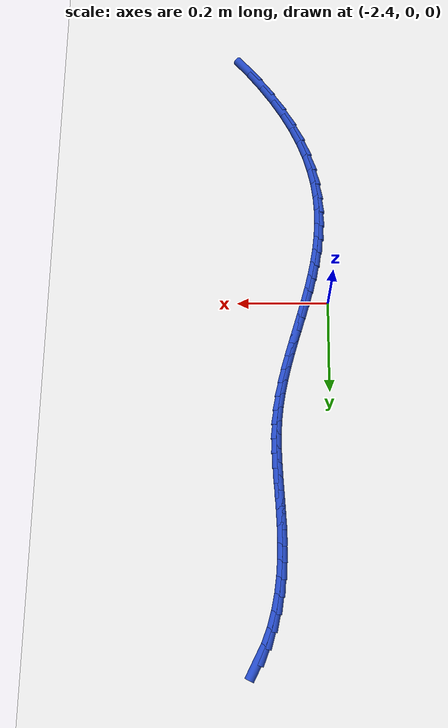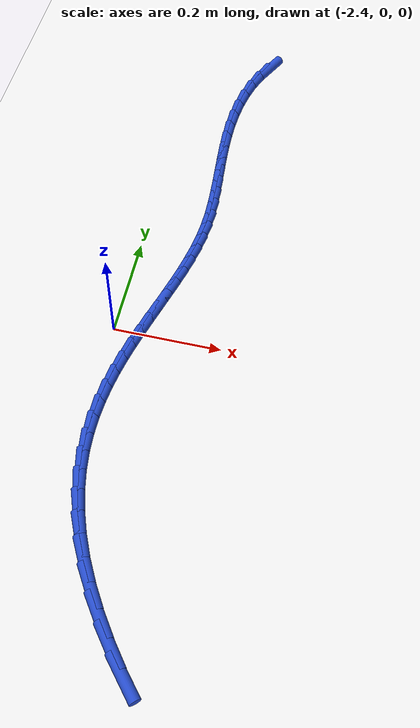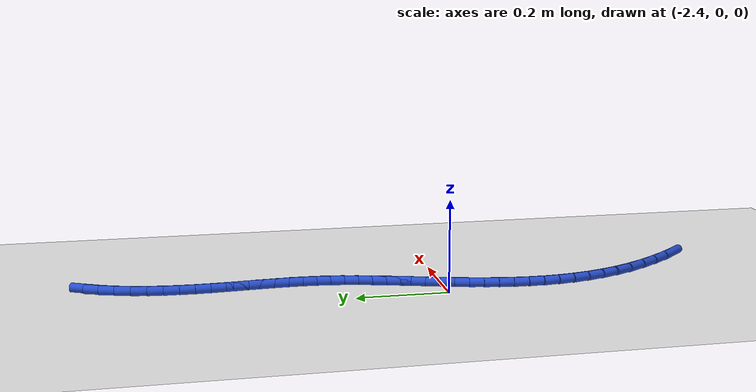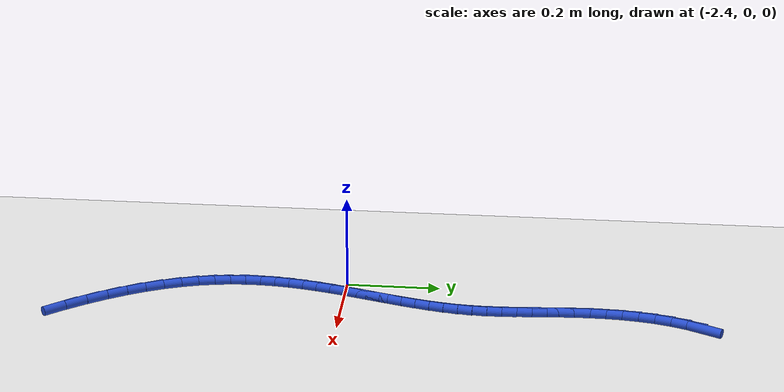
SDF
<sdf version="1.6">
 <world name="default">
  <model name="ground_plane">
   <static>1</static>
   <link name="link">
    <collision name="collision">
     <geometry><plane><normal>0 0 1</normal><size>100 100</size></plane></geometry>
     <surface><friction><ode><mu>100</mu><mu2>50</mu2></ode></friction></surface>
    </collision>
    <visual name="visual">
     <cast_shadows>0</cast_shadows>
     <geometry><plane><normal>0 0 1</normal><size>100 100</size></plane></geometry>
     <material>
      <script><uri>file://media/materials/scripts/gazebo.material</uri><name>Gazebo/WhiteGlow</name></script>
     </material>
    </visual>
   </link>
  </model>
  <model name="line">
   <link name="link_103">
    <pose>-2.2491230213512154 0.7437781416370526 0.01 0 1.57 1.1083394417401125</pose>
    <collision name="collision">
     <geometry><cylinder><radius>0.01</radius><length>0.08</length></cylinder></geometry>
    </collision>
    <visual name="visual">
     <material>
      <script><name>Gazebo/Blue</name><uri>file://media/materials/scripts/gazebo.material</uri></script>
     </material>
     <geometry><cylinder><radius>0.01</radius><length>0.08</length></cylinder></geometry>
    </visual>
   </link>
   <link name="link_104">
    <pose>-2.263714909391568 0.7145072835814696 0.01 0 1.57 1.2164052872625433</pose>
    <collision name="collision">
     <geometry><cylinder><radius>0.01</radius><length>0.08</length></cylinder></geometry>
    </collision>
    <visual name="visual">
     <material>
      <script><name>Gazebo/Blue</name><uri>file://media/materials/scripts/gazebo.material</uri></script>
     </material>
     <geometry><cylinder><radius>0.01</radius><length>0.08</length></cylinder></geometry>
    </visual>
   </link>
   <link name="link_105">
    <pose>-2.275316665080006 0.6831522585227706 0.01 0 1.57 1.307256020430511</pose>
    <collision name="collision">
     <geometry><cylinder><radius>0.01</radius><length>0.08</length></cylinder></geometry>
    </collision>
    <visual name="visual">
     <material>
      <script><name>Gazebo/Blue</name><uri>file://media/materials/scripts/gazebo.material</uri></script>
     </material>
     <geometry><cylinder><radius>0.01</radius><length>0.08</length></cylinder></geometry>
    </visual>
   </link>
   <link name="link_106">
    <pose>-2.284156563734444 0.6503895630564656 0.01 0 1.57 1.384692343403036</pose>
    <collision name="collision">
     <geometry><cylinder><radius>0.01</radius><length>0.08</length></cylinder></geometry>
    </collision>
    <visual name="visual">
     <material>
      <script><name>Gazebo/Blue</name><uri>file://media/materials/scripts/gazebo.material</uri></script>
     </material>
     <geometry><cylinder><radius>0.01</radius><length>0.08</length></cylinder></geometry>
    </visual>
   </link>
   <link name="link_107">
    <pose>-2.290462880672795 0.6168956937780656 0.01 0 1.57 1.4520692047336956</pose>
    <collision name="collision">
     <geometry><cylinder><radius>0.01</radius><length>0.08</length></cylinder></geometry>
    </collision>
    <visual name="visual">
     <material>
      <script><name>Gazebo/Blue</name><uri>file://media/materials/scripts/gazebo.material</uri></script>
     </material>
     <geometry><cylinder><radius>0.01</radius><length>0.08</length></cylinder></geometry>
    </visual>
   </link>
   <link name="link_108">
    <pose>-2.294465810321319 0.5833388848919385 0.01 0 1.57 1.5107909983761765</pose>
    <collision name="collision">
     <geometry><cylinder><radius>0.01</radius><length>0.08</length></cylinder></geometry>
    </collision>
    <visual name="visual">
     <material>
      <script><name>Gazebo/Blue</name><uri>file://media/materials/scripts/gazebo.material</uri></script>
     </material>
     <geometry><cylinder><radius>0.01</radius><length>0.08</length></cylinder></geometry>
    </visual>
   </link>
   <link name="link_109">
    <pose>-2.2964628654140493 0.5500975431983846 0.01 0 1.57 1.559487716065193</pose>
    <collision name="collision">
     <geometry><cylinder><radius>0.01</radius><length>0.08</length></cylinder></geometry>
    </collision>
    <visual name="visual">
     <material>
      <script><name>Gazebo/Blue</name><uri>file://media/materials/scripts/gazebo.material</uri></script>
     </material>
     <geometry><cylinder><radius>0.01</radius><length>0.08</length></cylinder></geometry>
    </visual>
   </link>
   <link name="link_110">
    <pose>-2.2968350109860936 0.5171907859584208 0.01 0 1.57 -1.5441995211613362</pose>
    <collision name="collision">
     <geometry><cylinder><radius>0.01</radius><length>0.08</length></cylinder></geometry>
    </collision>
    <visual name="visual">
     <material>
      <script><name>Gazebo/Blue</name><uri>file://media/materials/scripts/gazebo.material</uri></script>
     </material>
     <geometry><cylinder><radius>0.01</radius><length>0.08</length></cylinder></geometry>
    </visual>
   </link>
   <link name="link_111">
    <pose>-2.295968404741032 0.48461537429143253 0.01 0 1.57 -1.517533757458364</pose>
    <collision name="collision">
     <geometry><cylinder><radius>0.01</radius><length>0.08</length></cylinder></geometry>
    </collision>
    <visual name="visual">
     <material>
      <script><name>Gazebo/Blue</name><uri>file://media/materials/scripts/gazebo.material</uri></script>
     </material>
     <geometry><cylinder><radius>0.01</radius><length>0.08</length></cylinder></geometry>
    </visual>
   </link>
   <link name="link_112">
    <pose>-2.2942492043824454 0.45236806931680484 0.01 0 1.57 -1.502435910078608</pose>
    <collision name="collision">
     <geometry><cylinder><radius>0.01</radius><length>0.08</length></cylinder></geometry>
    </collision>
    <visual name="visual">
     <material>
      <script><name>Gazebo/Blue</name><uri>file://media/materials/scripts/gazebo.material</uri></script>
     </material>
     <geometry><cylinder><radius>0.01</radius><length>0.08</length></cylinder></geometry>
    </visual>
   </link>
   <link name="link_113">
    <pose>-2.292063567613914 0.4204456321539226 0.01 0 1.57 -1.4992144867879704</pose>
    <collision name="collision">
     <geometry><cylinder><radius>0.01</radius><length>0.08</length></cylinder></geometry>
    </collision>
    <visual name="visual">
     <material>
      <script><name>Gazebo/Blue</name><uri>file://media/materials/scripts/gazebo.material</uri></script>
     </material>
     <geometry><cylinder><radius>0.01</radius><length>0.08</length></cylinder></geometry>
    </visual>
   </link>
   <link name="link_114">
    <pose>-2.2897976521390175 0.38884482392217123 0.01 0 1.57 -1.5082219570572375</pose>
    <collision name="collision">
     <geometry><cylinder><radius>0.01</radius><length>0.08</length></cylinder></geometry>
    </collision>
    <visual name="visual">
     <material>
      <script><name>Gazebo/Blue</name><uri>file://media/materials/scripts/gazebo.material</uri></script>
     </material>
     <geometry><cylinder><radius>0.01</radius><length>0.08</length></cylinder></geometry>
    </visual>
   </link>
   <link name="link_115">
    <pose>-2.287837615661336 0.3575624057409356 0.01 0 1.57 -1.5298727334883941</pose>
    <collision name="collision">
     <geometry><cylinder><radius>0.01</radius><length>0.08</length></cylinder></geometry>
    </collision>
    <visual name="visual">
     <material>
      <script><name>Gazebo/Blue</name><uri>file://media/materials/scripts/gazebo.material</uri></script>
     </material>
     <geometry><cylinder><radius>0.01</radius><length>0.08</length></cylinder></geometry>
    </visual>
   </link>
   <link name="link_116">
    <pose>-2.28656961588445 0.32659513872960066 0.01 0 1.57 -1.5646048164098023</pose>
    <collision name="collision">
     <geometry><cylinder><radius>0.01</radius><length>0.08</length></cylinder></geometry>
    </collision>
    <visual name="visual">
     <material>
      <script><name>Gazebo/Blue</name><uri>file://media/materials/scripts/gazebo.material</uri></script>
     </material>
     <geometry><cylinder><radius>0.01</radius><length>0.08</length></cylinder></geometry>
    </visual>
   </link>
   <link name="link_117">
    <pose>-2.28637981051194 0.2959397840075516 0.01 0 1.57 1.5288216247889226</pose>
    <collision name="collision">
     <geometry><cylinder><radius>0.01</radius><length>0.08</length></cylinder></geometry>
    </collision>
    <visual name="visual">
     <material>
      <script><name>Gazebo/Blue</name><uri>file://media/materials/scripts/gazebo.material</uri></script>
     </material>
     <geometry><cylinder><radius>0.01</radius><length>0.08</length></cylinder></geometry>
    </visual>
   </link>
   <link name="link_118">
    <pose>-2.287654352051467 0.265593102248463 0.01 0 1.57 1.4710916535704168</pose>
    <collision name="collision">
     <geometry><cylinder><radius>0.01</radius><length>0.08</length></cylinder></geometry>
    </collision>
    <visual name="visual">
     <material>
      <script><name>Gazebo/Blue</name><uri>file://media/materials/scripts/gazebo.material</uri></script>
     </material>
     <geometry><cylinder><radius>0.01</radius><length>0.08</length></cylinder></geometry>
    </visual>
   </link>
   <link name="link_119">
    <pose>-2.290660589276395 0.23554166303483232 0.01 0 1.57 1.4183520591704075</pose>
    <collision name="collision">
     <geometry><cylinder><radius>0.01</radius><length>0.08</length></cylinder></geometry>
    </collision>
    <visual name="visual">
     <material>
      <script><name>Gazebo/Blue</name><uri>file://media/materials/scripts/gazebo.material</uri></script>
     </material>
     <geometry><cylinder><radius>0.01</radius><length>0.08</length></cylinder></geometry>
    </visual>
   </link>
   <link name="link_120">
    <pose>-2.295239896967014 0.20573549551692177 0.01 0 1.57 1.3742284952630461</pose>
    <collision name="collision">
     <geometry><cylinder><radius>0.01</radius><length>0.08</length></cylinder></geometry>
    </collision>
    <visual name="visual">
     <material>
      <script><name>Gazebo/Blue</name><uri>file://media/materials/scripts/gazebo.material</uri></script>
     </material>
     <geometry><cylinder><radius>0.01</radius><length>0.08</length></cylinder></geometry>
    </visual>
   </link>
   <link name="link_121">
    <pose>-2.3011382146302983 0.17611644232141563 0.01 0 1.57 1.3389211388916566</pose>
    <collision name="collision">
     <geometry><cylinder><radius>0.01</radius><length>0.08</length></cylinder></geometry>
    </collision>
    <visual name="visual">
     <material>
      <script><name>Gazebo/Blue</name><uri>file://media/materials/scripts/gazebo.material</uri></script>
     </material>
     <geometry><cylinder><radius>0.01</radius><length>0.08</length></cylinder></geometry>
    </visual>
   </link>
   <link name="link_122">
    <pose>-2.3081014817732237 0.14662634607499933 0.01 0 1.57 1.3124481144002902</pose>
    <collision name="collision">
     <geometry><cylinder><radius>0.01</radius><length>0.08</length></cylinder></geometry>
    </collision>
    <visual name="visual">
     <material>
      <script><name>Gazebo/Blue</name><uri>file://media/materials/scripts/gazebo.material</uri></script>
     </material>
     <geometry><cylinder><radius>0.01</radius><length>0.08</length></cylinder></geometry>
    </visual>
   </link>
   <link name="link_123">
    <pose>-2.3158756379027654 0.11720704940435789 0.01 0 1.57 1.2947276640802658</pose>
    <collision name="collision">
     <geometry><cylinder><radius>0.01</radius><length>0.08</length></cylinder></geometry>
    </collision>
    <visual name="visual">
     <material>
      <script><name>Gazebo/Blue</name><uri>file://media/materials/scripts/gazebo.material</uri></script>
     </material>
     <geometry><cylinder><radius>0.01</radius><length>0.08</length></cylinder></geometry>
    </visual>
   </link>
   <link name="link_124">
    <pose>-2.3242066225258986 0.08780039493617639 0.01 0 1.57 1.2856404415819005</pose>
    <collision name="collision">
     <geometry><cylinder><radius>0.01</radius><length>0.08</length></cylinder></geometry>
    </collision>
    <visual name="visual">
     <material>
      <script><name>Gazebo/Blue</name><uri>file://media/materials/scripts/gazebo.material</uri></script>
     </material>
     <geometry><cylinder><radius>0.01</radius><length>0.08</length></cylinder></geometry>
    </visual>
   </link>
   <link name="link_125">
    <pose>-2.332840375149599 0.058348225297139886 0.01 0 1.57 1.285069855130219</pose>
    <collision name="collision">
     <geometry><cylinder><radius>0.01</radius><length>0.08</length></cylinder></geometry>
    </collision>
    <visual name="visual">
     <material>
      <script><name>Gazebo/Blue</name><uri>file://media/materials/scripts/gazebo.material</uri></script>
     </material>
     <geometry><cylinder><radius>0.01</radius><length>0.08</length></cylinder></geometry>
    </visual>
   </link>
   <link name="link_126">
    <pose>-2.3415228352808417 0.02879238311393339 0.01 0 1.57 1.292921572490362</pose>
    <collision name="collision">
     <geometry><cylinder><radius>0.01</radius><length>0.08</length></cylinder></geometry>
    </collision>
    <visual name="visual">
     <material>
      <script><name>Gazebo/Blue</name><uri>file://media/materials/scripts/gazebo.material</uri></script>
     </material>
     <geometry><cylinder><radius>0.01</radius><length>0.08</length></cylinder></geometry>
    </visual>
   </link>
   <link name="link_127">
    <pose>-2.349999942426602 -0.0009252889867580154 0.01 0 1.57 1.3091240346363069</pose>
    <collision name="collision">
     <geometry><cylinder><radius>0.01</radius><length>0.08</length></cylinder></geometry>
    </collision>
    <visual name="visual">
     <material>
      <script><name>Gazebo/Blue</name><uri>file://media/materials/scripts/gazebo.material</uri></script>
     </material>
     <geometry><cylinder><radius>0.01</radius><length>0.08</length></cylinder></geometry>
    </visual>
   </link>
   <link name="link_128">
    <pose>-2.358017636093856 -0.030862948378249353 0.01 0 1.57 1.3336114143951778</pose>
    <collision name="collision">
     <geometry><cylinder><radius>0.01</radius><length>0.08</length></cylinder></geometry>
    </collision>
    <visual name="visual">
     <material>
      <script><name>Gazebo/Blue</name><uri>file://media/materials/scripts/gazebo.material</uri></script>
     </material>
     <geometry><cylinder><radius>0.01</radius><length>0.08</length></cylinder></geometry>
    </visual>
   </link>
   <link name="link_129">
    <pose>-2.365321855789577 -0.061078752433855486 0.01 0 1.57 1.3662900139993648</pose>
    <collision name="collision">
     <geometry><cylinder><radius>0.01</radius><length>0.08</length></cylinder></geometry>
    </collision>
    <visual name="visual">
     <material>
      <script><name>Gazebo/Blue</name><uri>file://media/materials/scripts/gazebo.material</uri></script>
     </material>
     <geometry><cylinder><radius>0.01</radius><length>0.08</length></cylinder></geometry>
    </visual>
   </link>
   <link name="link_130">
    <pose>-2.3716585410207434 -0.09163085852689144 0.01 0 1.57 1.4069895315153036</pose>
    <collision name="collision">
     <geometry><cylinder><radius>0.01</radius><length>0.08</length></cylinder></geometry>
    </collision>
    <visual name="visual">
     <material>
      <script><name>Gazebo/Blue</name><uri>file://media/materials/scripts/gazebo.material</uri></script>
     </material>
     <geometry><cylinder><radius>0.01</radius><length>0.08</length></cylinder></geometry>
    </visual>
   </link>
   <link name="link_131">
    <pose>-2.376773631294329 -0.12257742403067218 0.01 0 1.57 1.4554026658669759</pose>
    <collision name="collision">
     <geometry><cylinder><radius>0.01</radius><length>0.08</length></cylinder></geometry>
    </collision>
    <visual name="visual">
     <material>
      <script><name>Gazebo/Blue</name><uri>file://media/materials/scripts/gazebo.material</uri></script>
     </material>
     <geometry><cylinder><radius>0.01</radius><length>0.08</length></cylinder></geometry>
    </visual>
   </link>
   <link name="link_132">
    <pose>-2.3804130661173084 -0.15397660631851262 0.01 0 1.57 1.511020508206538</pose>
    <collision name="collision">
     <geometry><cylinder><radius>0.01</radius><length>0.08</length></cylinder></geometry>
    </collision>
    <visual name="visual">
     <material>
      <script><name>Gazebo/Blue</name><uri>file://media/materials/scripts/gazebo.material</uri></script>
     </material>
     <geometry><cylinder><radius>0.01</radius><length>0.08</length></cylinder></geometry>
    </visual>
   </link>
   <link name="link_133">
    <pose>-2.382322784996658 -0.18588656276372775 0.01 0 1.57 -1.5685161554720854</pose>
    <collision name="collision">
     <geometry><cylinder><radius>0.01</radius><length>0.08</length></cylinder></geometry>
    </collision>
    <visual name="visual">
     <material>
      <script><name>Gazebo/Blue</name><uri>file://media/materials/scripts/gazebo.material</uri></script>
     </material>
     <geometry><cylinder><radius>0.01</radius><length>0.08</length></cylinder></geometry>
    </visual>
   </link>
   <link name="link_134">
    <pose>-2.3822487274393525 -0.21836545073963248 0.01 0 1.57 -1.5010763683906996</pose>
    <collision name="collision">
     <geometry><cylinder><radius>0.01</radius><length>0.08</length></cylinder></geometry>
    </collision>
    <visual name="visual">
     <material>
      <script><name>Gazebo/Blue</name><uri>file://media/materials/scripts/gazebo.material</uri></script>
     </material>
     <geometry><cylinder><radius>0.01</radius><length>0.08</length></cylinder></geometry>
    </visual>
   </link>
   <link name="link_135">
    <pose>-2.379936832952368 -0.2514714276195417 0.01 0 1.57 -1.4295816213976393</pose>
    <collision name="collision">
     <geometry><cylinder><radius>0.01</radius><length>0.08</length></cylinder></geometry>
    </collision>
    <visual name="visual">
     <material>
      <script><name>Gazebo/Blue</name><uri>file://media/materials/scripts/gazebo.material</uri></script>
     </material>
     <geometry><cylinder><radius>0.01</radius><length>0.08</length></cylinder></geometry>
    </visual>
   </link>
   <link name="link_136">
    <pose>-2.3751330410426794 -0.2852626507767706 0.01 0 1.57 -1.355568505262666</pose>
    <collision name="collision">
     <geometry><cylinder><radius>0.01</radius><length>0.08</length></cylinder></geometry>
    </collision>
    <visual name="visual">
     <material>
      <script><name>Gazebo/Blue</name><uri>file://media/materials/scripts/gazebo.material</uri></script>
     </material>
     <geometry><cylinder><radius>0.01</radius><length>0.08</length></cylinder></geometry>
    </visual>
   </link>
   <link name="link_137">
    <pose>-2.367583291217262 -0.31979727758463394 0.01 0 1.57 -1.2806664570309736</pose>
    <collision name="collision">
     <geometry><cylinder><radius>0.01</radius><length>0.08</length></cylinder></geometry>
    </collision>
    <visual name="visual">
     <material>
      <script><name>Gazebo/Blue</name><uri>file://media/materials/scripts/gazebo.material</uri></script>
     </material>
     <geometry><cylinder><radius>0.01</radius><length>0.08</length></cylinder></geometry>
    </visual>
   </link>
   <link name="link_138">
    <pose>-2.357033522983092 -0.35513346541644664 0.01 0 1.57 -1.2064572050118578</pose>
    <collision name="collision">
     <geometry><cylinder><radius>0.01</radius><length>0.08</length></cylinder></geometry>
    </collision>
    <visual name="visual">
     <material>
      <script><name>Gazebo/Blue</name><uri>file://media/materials/scripts/gazebo.material</uri></script>
     </material>
     <geometry><cylinder><radius>0.01</radius><length>0.08</length></cylinder></geometry>
    </visual>
   </link>
   <link name="link_139">
    <pose>-2.3432296758471436 -0.39132937164552384 0.01 0 1.57 -1.1343412832919268</pose>
    <collision name="collision">
     <geometry><cylinder><radius>0.01</radius><length>0.08</length></cylinder></geometry>
    </collision>
    <visual name="visual">
     <material>
      <script><name>Gazebo/Blue</name><uri>file://media/materials/scripts/gazebo.material</uri></script>
     </material>
     <geometry><cylinder><radius>0.01</radius><length>0.08</length></cylinder></geometry>
    </visual>
   </link>
   <link name="link_140">
    <pose>-2.3259176893163933 -0.4284431536451804 0.01 0 1.57 -1.065441314826066</pose>
    <collision name="collision">
     <geometry><cylinder><radius>0.01</radius><length>0.08</length></cylinder></geometry>
    </collision>
    <visual name="visual">
     <material>
      <script><name>Gazebo/Blue</name><uri>file://media/materials/scripts/gazebo.material</uri></script>
     </material>
     <geometry><cylinder><radius>0.01</radius><length>0.08</length></cylinder></geometry>
    </visual>
   </link>
   <link name="link_141">
    <pose>-2.304843502897816 -0.46653296878873135 0.01 0 1.57 -1.0015558117646597</pose>
    <collision name="collision">
     <geometry><cylinder><radius>0.01</radius><length>0.08</length></cylinder></geometry>
    </collision>
    <visual name="visual">
     <material>
      <script><name>Gazebo/Blue</name><uri>file://media/materials/scripts/gazebo.material</uri></script>
     </material>
     <geometry><cylinder><radius>0.01</radius><length>0.08</length></cylinder></geometry>
    </visual>
   </link>
   <link name="link_142">
    <pose>-2.279907647207919 -0.5055014806665754 0.01 0 1.57 -0.9455101367235274</pose>
    <collision name="collision">
     <geometry><cylinder><radius>0.01</radius><length>0.08</length></cylinder></geometry>
    </collision>
    <visual name="visual">
     <material>
      <script><name>Gazebo/Blue</name><uri>file://media/materials/scripts/gazebo.material</uri></script>
     </material>
     <geometry><cylinder><radius>0.01</radius><length>0.08</length></cylinder></geometry>
    </visual>
   </link>
   <link name="link_143">
    <pose>-2.2517437834175675 -0.5445139414900813 0.01 0 1.57 -0.8938375422975541</pose>
    <collision name="collision">
     <geometry><cylinder><radius>0.01</radius><length>0.08</length></cylinder></geometry>
    </collision>
    <visual name="visual">
     <material>
      <script><name>Gazebo/Blue</name><uri>file://media/materials/scripts/gazebo.material</uri></script>
     </material>
     <geometry><cylinder><radius>0.01</radius><length>0.08</length></cylinder></geometry>
    </visual>
   </link>
   <link name="link_144">
    <pose>-2.2212026802138314 -0.5825172282412997 0.01 0 1.57 -0.8422915752449772</pose>
    <collision name="collision">
     <geometry><cylinder><radius>0.01</radius><length>0.08</length></cylinder></geometry>
    </collision>
    <visual name="visual">
     <material>
      <script><name>Gazebo/Blue</name><uri>file://media/materials/scripts/gazebo.material</uri></script>
     </material>
     <geometry><cylinder><radius>0.01</radius><length>0.08</length></cylinder></geometry>
    </visual>
   </link>
  </model>
 </world>
</sdf>
